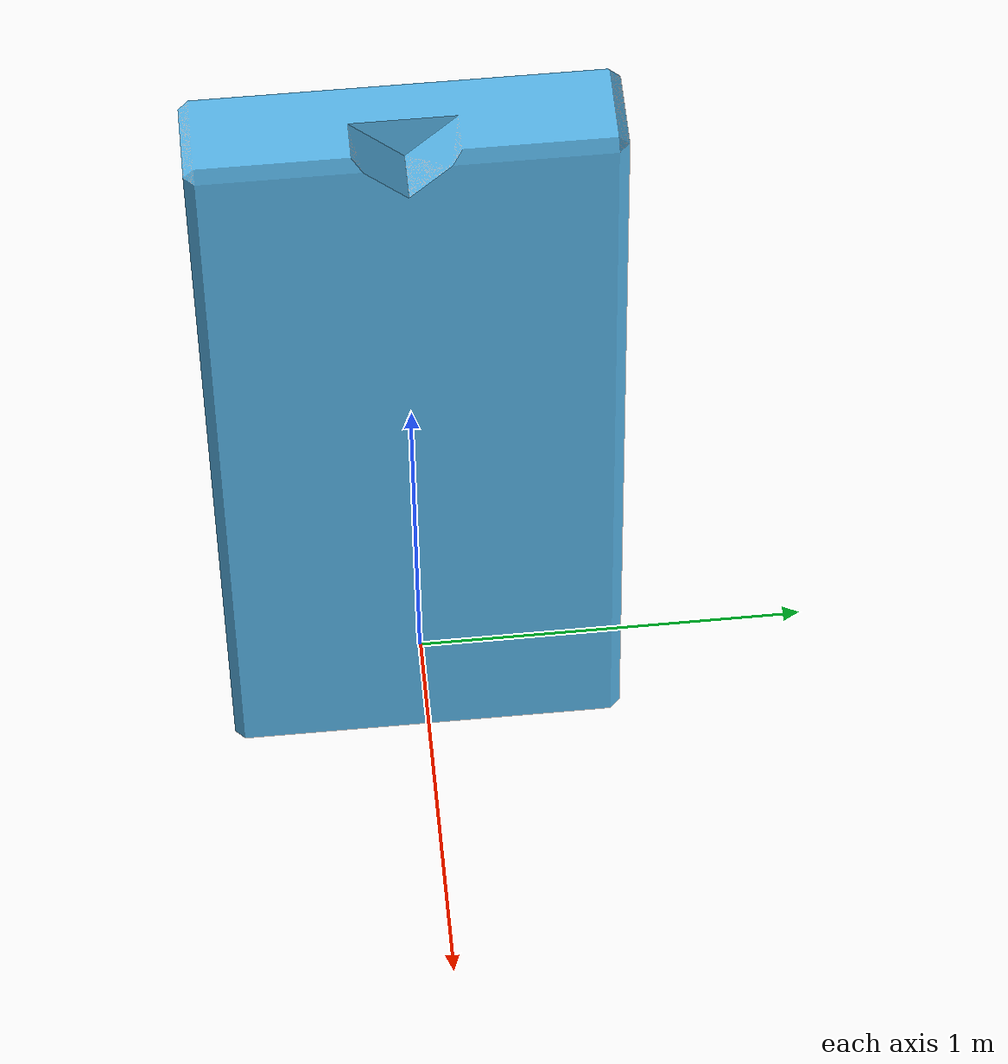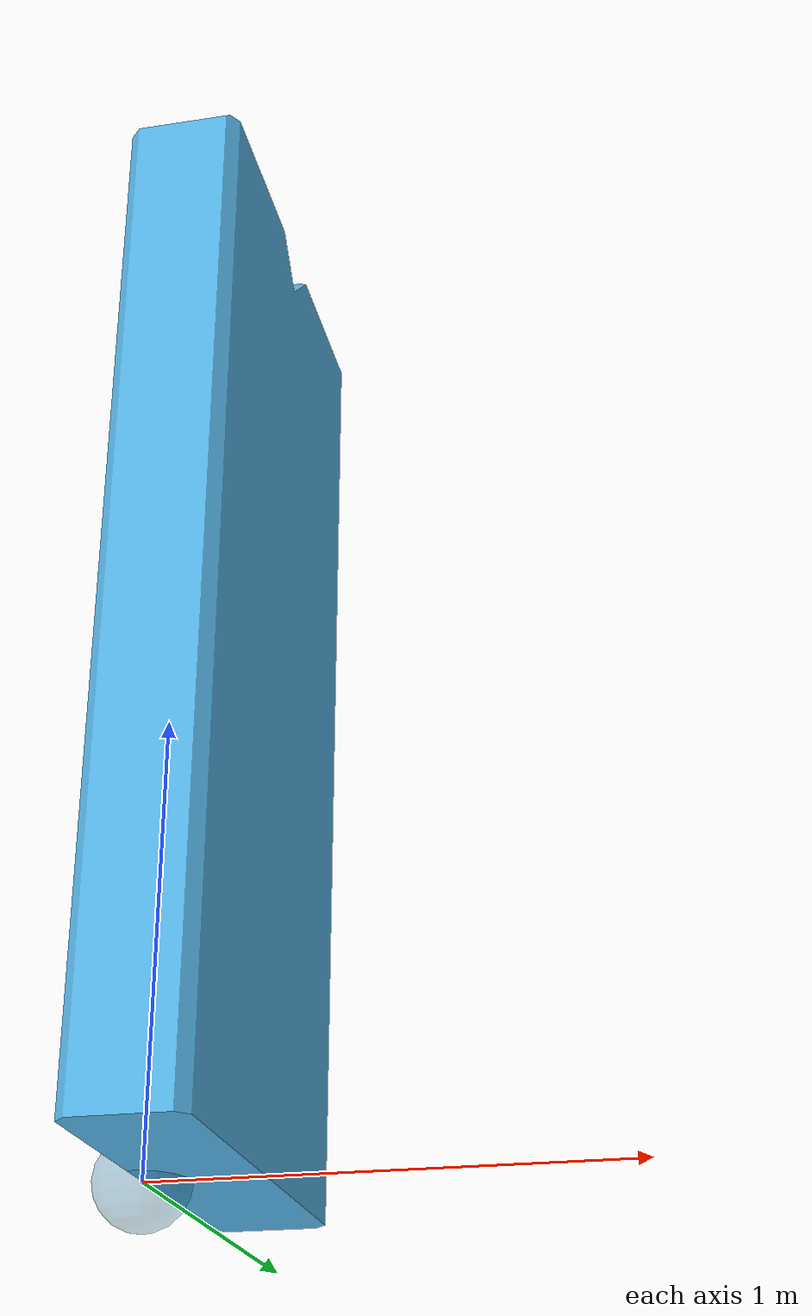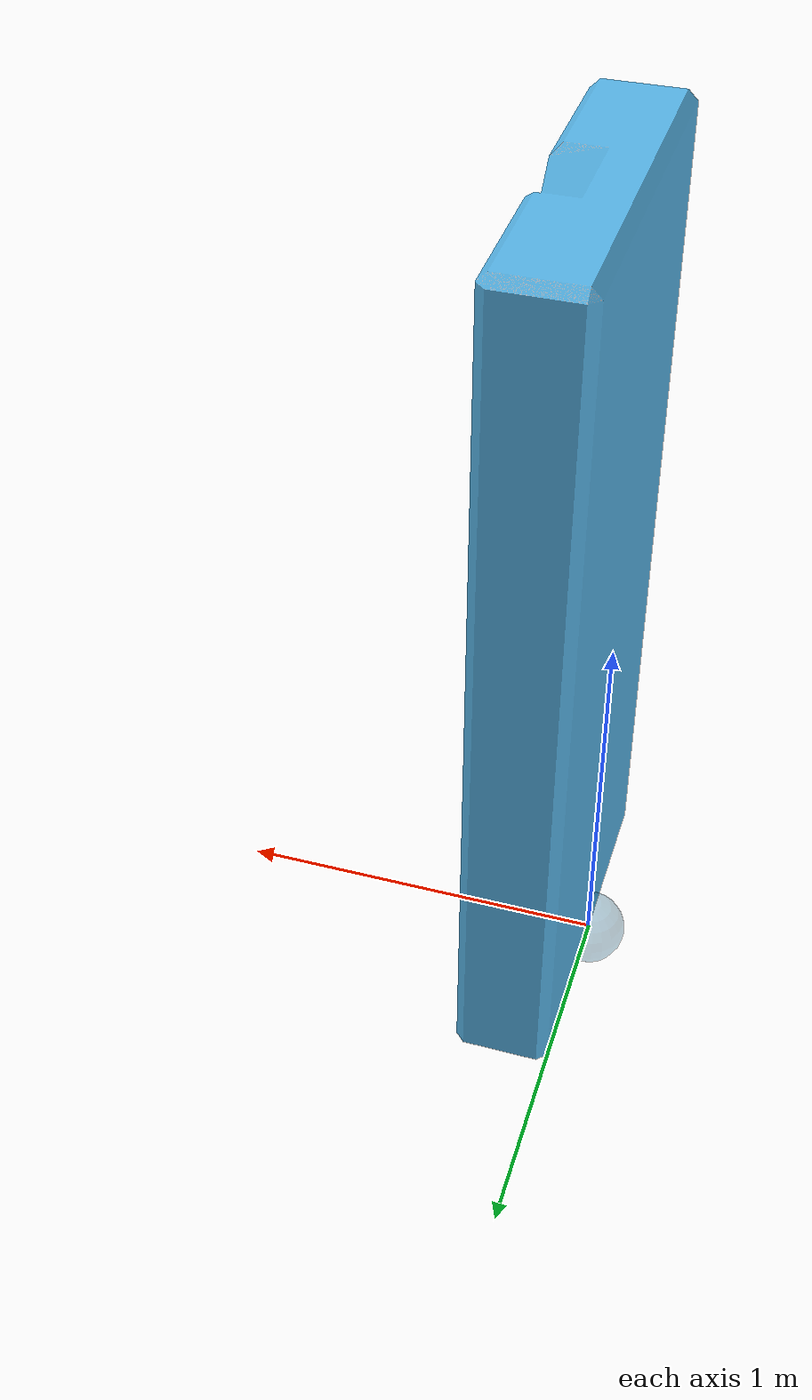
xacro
<?xml version="1.0"?>

<robot name="intel" xmlns:xacro="http://www.ros.org/wiki/xacro">

    <!-- PROPERTIES -->

    <xacro:property name="M_PI" value="3.1415926535897931"/>

    <xacro:arg name="sensor_update_rate" default="25.0"/>
    <xacro:arg name="controller_update_rate" default="50.0"/>
	<xacro:property name="sensor_update_rate" value="$(arg sensor_update_rate)"/>
	<xacro:property name="controller_update_rate" value="$(arg controller_update_rate)"/>

    <!-- MATERIALS -->

    <material name="OA">
        <color rgba="0.101960784 0.42745098 0.588235294 0.333"/>
    </material>

    <!-- PLUGINS -->

	<gazebo>
		<plugin name="gazebo_ros_template" filename="libgazebo_ros_template.so"/>
	</gazebo>

	<!-- === LINKS === -->

	<link name="link_base">
        <visual>
            <origin xyz="0.0 0.0 0.0"/>
            <geometry>
                <sphere radius="0.1"/>
            </geometry>
            <material name="OA"/>
        </visual>
	</link>

    <link name="link_intel_body">
		<inertial>
			<origin xyz="0.125 0.0 1.0" rpy="0.0 0.0 0.0"/>
			<mass value="1.0"/>
			<inertia ixx="1.0" ixy="0.0" ixz="0.0" iyy="1.0" iyz="0.0" izz="1.0"/>
		</inertial>
		<collision>
			<origin xyz="0.0 0.0 0.0" rpy="0.0 0.0 0.0"/>
			<geometry>
                <mesh filename="package://wai_oa_gazebo/resources/reps/intel/link_intel_body.dae"/>
			</geometry>
		</collision>
		<visual>
			<origin xyz="0.0 0.0 0.0" rpy="0.0 0.0 0.0"/>
			<geometry>
				<mesh filename="package://wai_oa_gazebo/resources/reps/intel/link_intel_body.dae"/>
			</geometry>
		</visual>
    </link>

    <link name="link_intel_display">
    </link>

	<!-- === JOINTS === -->

	<joint name="joint_intel_body" type="fixed">
        <parent link="link_base"/>
        <child link="link_intel_body"/>
        <origin xyz="0.0 0.0 0.0" rpy="0.0 0.0 0.0"/>
        <axis xyz="0 0 1"/>
	</joint>

	<joint name="joint_intel_display" type="fixed">
        <parent link="link_base"/>
        <child link="link_intel_display"/>
        <origin xyz="0.255 0.0 1.3125" rpy="1.570796327 0.0 1.570796327"/>
	</joint>

</robot>
